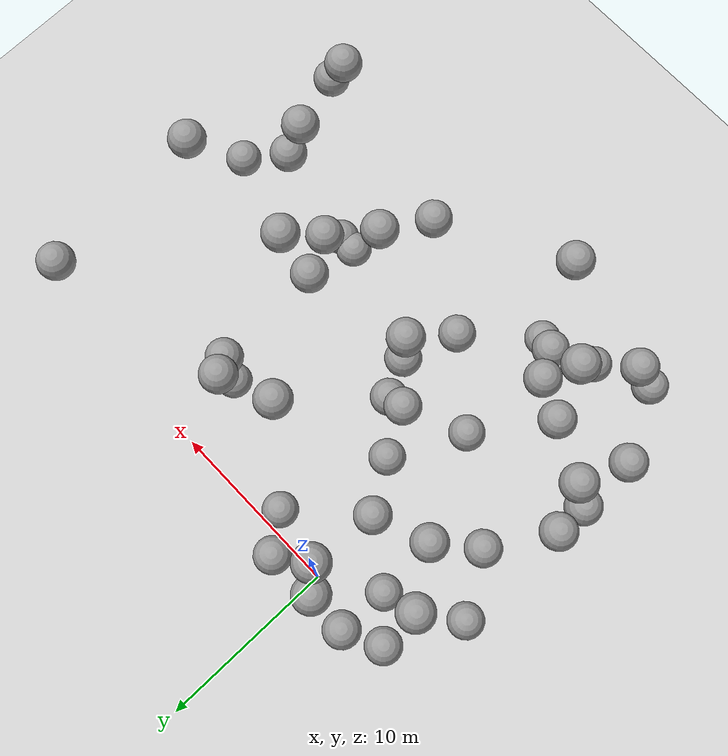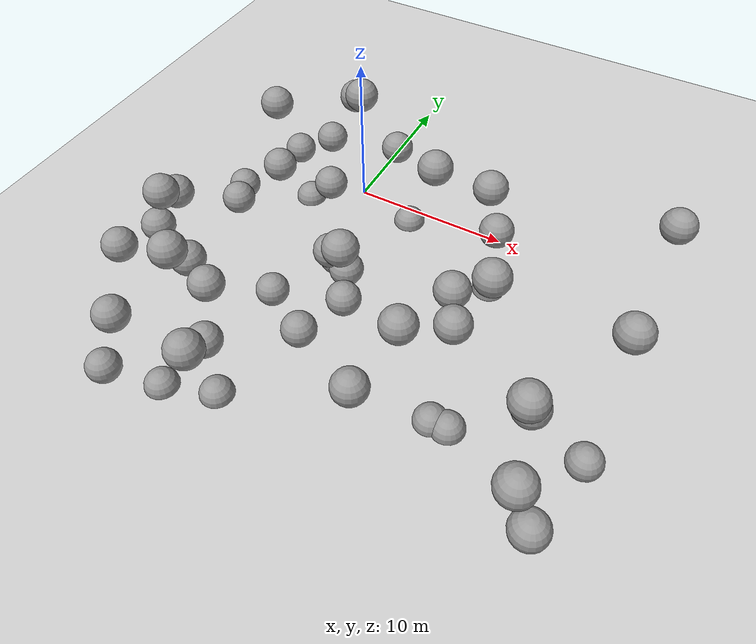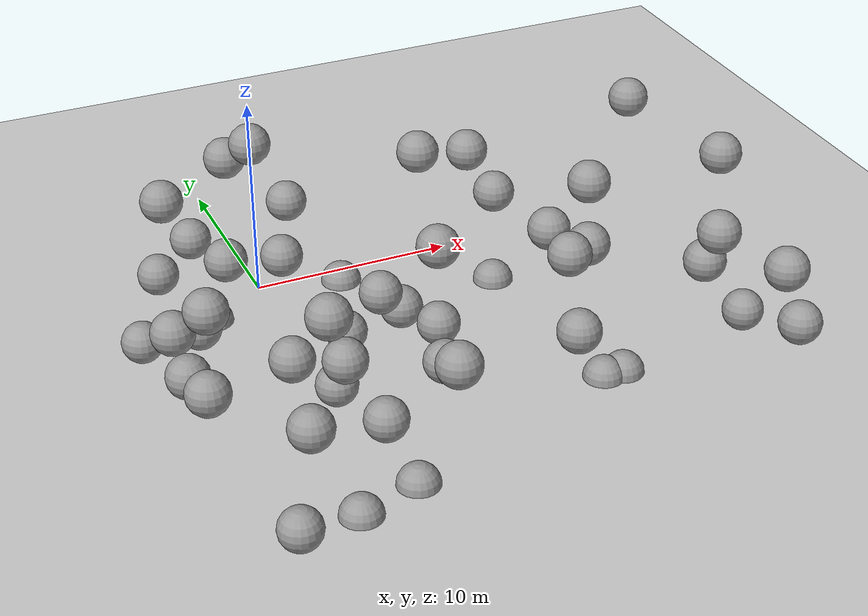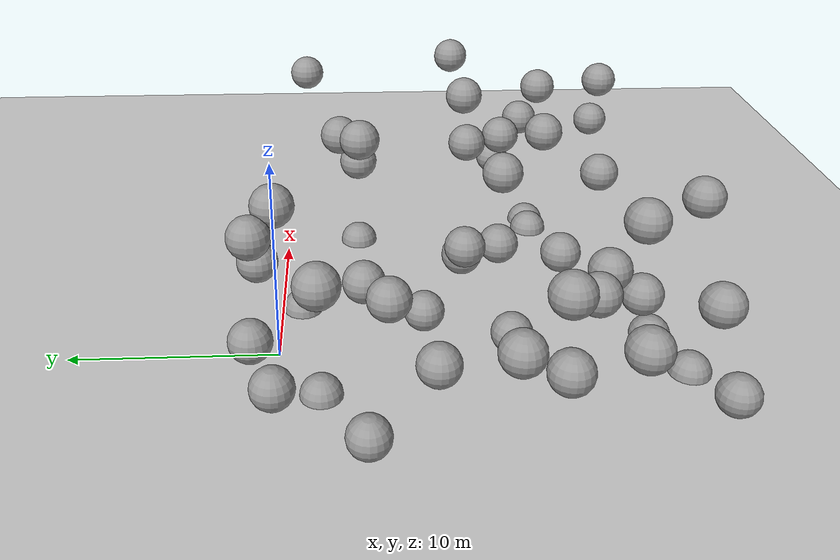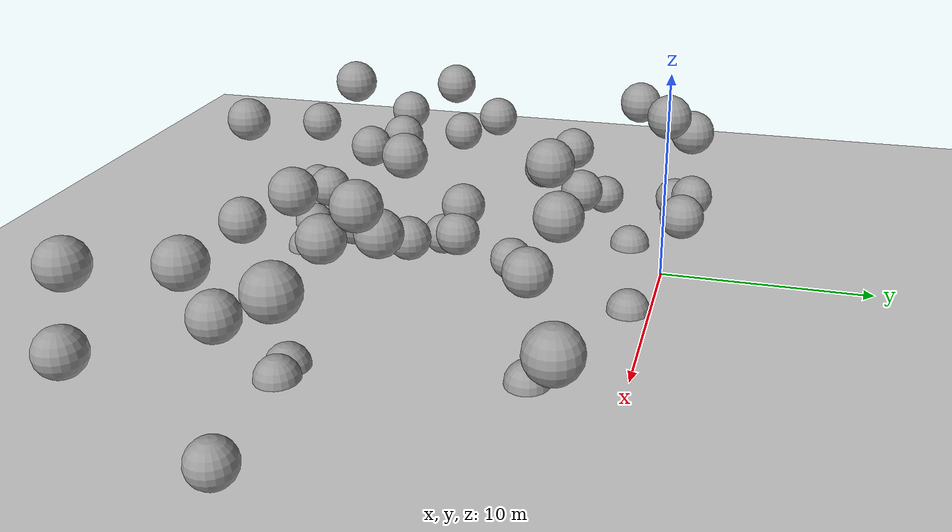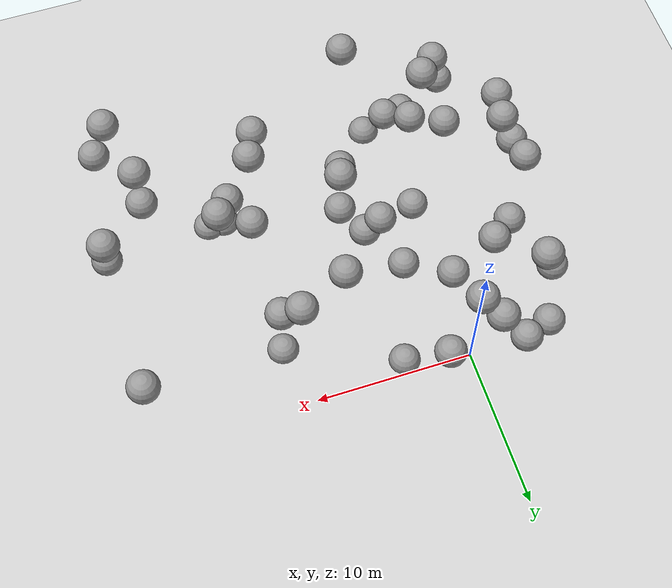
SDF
<sdf version="1.7">
 <world name="default">
  <model name="ground_plane">
   <static>1</static>
   <link name="link">
    <collision name="collision">
     <geometry><plane><normal>0 0 1</normal><size>100 100</size></plane></geometry>
     <surface>
      <contact><collide_bitmask>65535</collide_bitmask></contact>
      <friction><ode><mu>100</mu><mu2>50</mu2></ode></friction>
     </surface>
    </collision>
    <visual name="visual">
     <cast_shadows>0</cast_shadows>
     <geometry><plane><normal>0 0 1</normal><size>100 100</size></plane></geometry>
     <material>
      <script><uri>file://media/materials/scripts/gazebo.material</uri><name>Gazebo/Grey</name></script>
     </material>
    </visual>
   </link>
  </model>
  <model name="sphere_0">
   <static>1</static>
   <pose>0 0 8 0 0 0</pose>
   <link name="link">
    <inertial>
     <mass>418.87902047863906</mass>
     <inertia>
      <ixx>167.55160819145564</ixx>
      <iyy>167.55160819145564</iyy>
      <izz>167.55160819145564</izz>
      <ixy>0</ixy>
      <ixz>0</ixz>
      <iyz>0</iyz>
     </inertia>
    </inertial>
    <collision name="collision"><geometry><sphere><radius>1.0</radius></sphere></geometry></collision>
    <visual name="visual">
     <geometry><sphere><radius>1.0</radius></sphere></geometry>
     <material>
      <script><uri>file://media/materials/scripts/gazebo.material</uri><name>Gazebo/Grey</name></script>
     </material>
    </visual>
   </link>
  </model>
  <model name="sphere_5">
   <static>1</static>
   <pose>2 1 4 0 0 0</pose>
   <link name="link">
    <inertial>
     <mass>418.87902047863906</mass>
     <inertia>
      <ixx>167.55160819145564</ixx>
      <iyy>167.55160819145564</iyy>
      <izz>167.55160819145564</izz>
      <ixy>0</ixy>
      <ixz>0</ixz>
      <iyz>0</iyz>
     </inertia>
    </inertial>
    <collision name="collision"><geometry><sphere><radius>1.0</radius></sphere></geometry></collision>
    <visual name="visual">
     <geometry><sphere><radius>1.0</radius></sphere></geometry>
     <material>
      <script><uri>file://media/materials/scripts/gazebo.material</uri><name>Gazebo/Grey</name></script>
     </material>
    </visual>
   </link>
  </model>
  <model name="sphere_8">
   <static>1</static>
   <pose>4 -9 3 0 0 0</pose>
   <link name="link">
    <inertial>
     <mass>418.87902047863906</mass>
     <inertia>
      <ixx>167.55160819145564</ixx>
      <iyy>167.55160819145564</iyy>
      <izz>167.55160819145564</izz>
      <ixy>0</ixy>
      <ixz>0</ixz>
      <iyz>0</iyz>
     </inertia>
    </inertial>
    <collision name="collision"><geometry><sphere><radius>1.0</radius></sphere></geometry></collision>
    <visual name="visual">
     <geometry><sphere><radius>1.0</radius></sphere></geometry>
     <material>
      <script><uri>file://media/materials/scripts/gazebo.material</uri><name>Gazebo/Grey</name></script>
     </material>
    </visual>
   </link>
  </model>
  <model name="sphere_10">
   <static>1</static>
   <pose>11 -4 5 0 0 0</pose>
   <link name="link">
    <inertial>
     <mass>418.87902047863906</mass>
     <inertia>
      <ixx>167.55160819145564</ixx>
      <iyy>167.55160819145564</iyy>
      <izz>167.55160819145564</izz>
      <ixy>0</ixy>
      <ixz>0</ixz>
      <iyz>0</iyz>
     </inertia>
    </inertial>
    <collision name="collision"><geometry><sphere><radius>1.0</radius></sphere></geometry></collision>
    <visual name="visual">
     <geometry><sphere><radius>1.0</radius></sphere></geometry>
     <material>
      <script><uri>file://media/materials/scripts/gazebo.material</uri><name>Gazebo/Grey</name></script>
     </material>
    </visual>
   </link>
  </model>
  <model name="sphere_13">
   <static>1</static>
   <pose>12 -14 0 0 0 0</pose>
   <link name="link">
    <inertial>
     <mass>418.87902047863906</mass>
     <inertia>
      <ixx>167.55160819145564</ixx>
      <iyy>167.55160819145564</iyy>
      <izz>167.55160819145564</izz>
      <ixy>0</ixy>
      <ixz>0</ixz>
      <iyz>0</iyz>
     </inertia>
    </inertial>
    <collision name="collision"><geometry><sphere><radius>1.0</radius></sphere></geometry></collision>
    <visual name="visual">
     <geometry><sphere><radius>1.0</radius></sphere></geometry>
     <material>
      <script><uri>file://media/materials/scripts/gazebo.material</uri><name>Gazebo/Grey</name></script>
     </material>
    </visual>
   </link>
  </model>
  <model name="sphere_22">
   <static>1</static>
   <pose>2 -7 1 0 0 0</pose>
   <link name="link">
    <inertial>
     <mass>418.87902047863906</mass>
     <inertia>
      <ixx>167.55160819145564</ixx>
      <iyy>167.55160819145564</iyy>
      <izz>167.55160819145564</izz>
      <ixy>0</ixy>
      <ixz>0</ixz>
      <iyz>0</iyz>
     </inertia>
    </inertial>
    <collision name="collision"><geometry><sphere><radius>1.0</radius></sphere></geometry></collision>
    <visual name="visual">
     <geometry><sphere><radius>1.0</radius></sphere></geometry>
     <material>
      <script><uri>file://media/materials/scripts/gazebo.material</uri><name>Gazebo/Grey</name></script>
     </material>
    </visual>
   </link>
  </model>
  <model name="sphere_25">
   <static>1</static>
   <pose>3 -9 4 0 0 0</pose>
   <link name="link">
    <inertial>
     <mass>418.87902047863906</mass>
     <inertia>
      <ixx>167.55160819145564</ixx>
      <iyy>167.55160819145564</iyy>
      <izz>167.55160819145564</izz>
      <ixy>0</ixy>
      <ixz>0</ixz>
      <iyz>0</iyz>
     </inertia>
    </inertial>
    <collision name="collision"><geometry><sphere><radius>1.0</radius></sphere></geometry></collision>
    <visual name="visual">
     <geometry><sphere><radius>1.0</radius></sphere></geometry>
     <material>
      <script><uri>file://media/materials/scripts/gazebo.material</uri><name>Gazebo/Grey</name></script>
     </material>
    </visual>
   </link>
  </model>
  <model name="sphere_26">
   <static>1</static>
   <pose>20 -1 7 0 0 0</pose>
   <link name="link">
    <inertial>
     <mass>418.87902047863906</mass>
     <inertia>
      <ixx>167.55160819145564</ixx>
      <iyy>167.55160819145564</iyy>
      <izz>167.55160819145564</izz>
      <ixy>0</ixy>
      <ixz>0</ixz>
      <iyz>0</iyz>
     </inertia>
    </inertial>
    <collision name="collision"><geometry><sphere><radius>1.0</radius></sphere></geometry></collision>
    <visual name="visual">
     <geometry><sphere><radius>1.0</radius></sphere></geometry>
     <material>
      <script><uri>file://media/materials/scripts/gazebo.material</uri><name>Gazebo/Grey</name></script>
     </material>
    </visual>
   </link>
  </model>
  <model name="sphere_27">
   <static>1</static>
   <pose>9 -17 5 0 0 0</pose>
   <link name="link">
    <inertial>
     <mass>418.87902047863906</mass>
     <inertia>
      <ixx>167.55160819145564</ixx>
      <iyy>167.55160819145564</iyy>
      <izz>167.55160819145564</izz>
      <ixy>0</ixy>
      <ixz>0</ixz>
      <iyz>0</iyz>
     </inertia>
    </inertial>
    <collision name="collision"><geometry><sphere><radius>1.0</radius></sphere></geometry></collision>
    <visual name="visual">
     <geometry><sphere><radius>1.0</radius></sphere></geometry>
     <material>
      <script><uri>file://media/materials/scripts/gazebo.material</uri><name>Gazebo/Grey</name></script>
     </material>
    </visual>
   </link>
  </model>
  <model name="sphere_43">
   <static>1</static>
   <pose>4 -1 0 0 0 0</pose>
   <link name="link">
    <inertial>
     <mass>418.87902047863906</mass>
     <inertia>
      <ixx>167.55160819145564</ixx>
      <iyy>167.55160819145564</iyy>
      <izz>167.55160819145564</izz>
      <ixy>0</ixy>
      <ixz>0</ixz>
      <iyz>0</iyz>
     </inertia>
    </inertial>
    <collision name="collision"><geometry><sphere><radius>1.0</radius></sphere></geometry></collision>
    <visual name="visual">
     <geometry><sphere><radius>1.0</radius></sphere></geometry>
     <material>
      <script><uri>file://media/materials/scripts/gazebo.material</uri><name>Gazebo/Grey</name></script>
     </material>
    </visual>
   </link>
  </model>
  <model name="sphere_45">
   <static>1</static>
   <pose>13 -14 0 0 0 0</pose>
   <link name="link">
    <inertial>
     <mass>418.87902047863906</mass>
     <inertia>
      <ixx>167.55160819145564</ixx>
      <iyy>167.55160819145564</iyy>
      <izz>167.55160819145564</izz>
      <ixy>0</ixy>
      <ixz>0</ixz>
      <iyz>0</iyz>
     </inertia>
    </inertial>
    <collision name="collision"><geometry><sphere><radius>1.0</radius></sphere></geometry></collision>
    <visual name="visual">
     <geometry><sphere><radius>1.0</radius></sphere></geometry>
     <material>
      <script><uri>file://media/materials/scripts/gazebo.material</uri><name>Gazebo/Grey</name></script>
     </material>
    </visual>
   </link>
  </model>
  <model name="sphere_51">
   <static>1</static>
   <pose>-7 -12 4 0 0 0</pose>
   <link name="link">
    <inertial>
     <mass>418.87902047863906</mass>
     <inertia>
      <ixx>167.55160819145564</ixx>
      <iyy>167.55160819145564</iyy>
      <izz>167.55160819145564</izz>
      <ixy>0</ixy>
      <ixz>0</ixz>
      <iyz>0</iyz>
     </inertia>
    </inertial>
    <collision name="collision"><geometry><sphere><radius>1.0</radius></sphere></geometry></collision>
    <visual name="visual">
     <geometry><sphere><radius>1.0</radius></sphere></geometry>
     <material>
      <script><uri>file://media/materials/scripts/gazebo.material</uri><name>Gazebo/Grey</name></script>
     </material>
    </visual>
   </link>
  </model>
  <model name="sphere_54">
   <static>1</static>
   <pose>10 -3 7 0 0 0</pose>
   <link name="link">
    <inertial>
     <mass>418.87902047863906</mass>
     <inertia>
      <ixx>167.55160819145564</ixx>
      <iyy>167.55160819145564</iyy>
      <izz>167.55160819145564</izz>
      <ixy>0</ixy>
      <ixz>0</ixz>
      <iyz>0</iyz>
     </inertia>
    </inertial>
    <collision name="collision"><geometry><sphere><radius>1.0</radius></sphere></geometry></collision>
    <visual name="visual">
     <geometry><sphere><radius>1.0</radius></sphere></geometry>
     <material>
      <script><uri>file://media/materials/scripts/gazebo.material</uri><name>Gazebo/Grey</name></script>
     </material>
    </visual>
   </link>
  </model>
  <model name="sphere_58">
   <static>1</static>
   <pose>17 -15 7 0 0 0</pose>
   <link name="link">
    <inertial>
     <mass>418.87902047863906</mass>
     <inertia>
      <ixx>167.55160819145564</ixx>
      <iyy>167.55160819145564</iyy>
      <izz>167.55160819145564</izz>
      <ixy>0</ixy>
      <ixz>0</ixz>
      <iyz>0</iyz>
     </inertia>
    </inertial>
    <collision name="collision"><geometry><sphere><radius>1.0</radius></sphere></geometry></collision>
    <visual name="visual">
     <geometry><sphere><radius>1.0</radius></sphere></geometry>
     <material>
      <script><uri>file://media/materials/scripts/gazebo.material</uri><name>Gazebo/Grey</name></script>
     </material>
    </visual>
   </link>
  </model>
  <model name="sphere_59">
   <static>1</static>
   <pose>-2 -19 0 0 0 0</pose>
   <link name="link">
    <inertial>
     <mass>418.87902047863906</mass>
     <inertia>
      <ixx>167.55160819145564</ixx>
      <iyy>167.55160819145564</iyy>
      <izz>167.55160819145564</izz>
      <ixy>0</ixy>
      <ixz>0</ixz>
      <iyz>0</iyz>
     </inertia>
    </inertial>
    <collision name="collision"><geometry><sphere><radius>1.0</radius></sphere></geometry></collision>
    <visual name="visual">
     <geometry><sphere><radius>1.0</radius></sphere></geometry>
     <material>
      <script><uri>file://media/materials/scripts/gazebo.material</uri><name>Gazebo/Grey</name></script>
     </material>
    </visual>
   </link>
  </model>
  <model name="sphere_63">
   <static>1</static>
   <pose>-5 -7 3 0 0 0</pose>
   <link name="link">
    <inertial>
     <mass>418.87902047863906</mass>
     <inertia>
      <ixx>167.55160819145564</ixx>
      <iyy>167.55160819145564</iyy>
      <izz>167.55160819145564</izz>
      <ixy>0</ixy>
      <ixz>0</ixz>
      <iyz>0</iyz>
     </inertia>
    </inertial>
    <collision name="collision"><geometry><sphere><radius>1.0</radius></sphere></geometry></collision>
    <visual name="visual">
     <geometry><sphere><radius>1.0</radius></sphere></geometry>
     <material>
      <script><uri>file://media/materials/scripts/gazebo.material</uri><name>Gazebo/Grey</name></script>
     </material>
    </visual>
   </link>
  </model>
  <model name="sphere_64">
   <static>1</static>
   <pose>-1 -15 5 0 0 0</pose>
   <link name="link">
    <inertial>
     <mass>418.87902047863906</mass>
     <inertia>
      <ixx>167.55160819145564</ixx>
      <iyy>167.55160819145564</iyy>
      <izz>167.55160819145564</izz>
      <ixy>0</ixy>
      <ixz>0</ixz>
      <iyz>0</iyz>
     </inertia>
    </inertial>
    <collision name="collision"><geometry><sphere><radius>1.0</radius></sphere></geometry></collision>
    <visual name="visual">
     <geometry><sphere><radius>1.0</radius></sphere></geometry>
     <material>
      <script><uri>file://media/materials/scripts/gazebo.material</uri><name>Gazebo/Grey</name></script>
     </material>
    </visual>
   </link>
  </model>
  <model name="sphere_65">
   <static>1</static>
   <pose>5 -11 7 0 0 0</pose>
   <link name="link">
    <inertial>
     <mass>418.87902047863906</mass>
     <inertia>
      <ixx>167.55160819145564</ixx>
      <iyy>167.55160819145564</iyy>
      <izz>167.55160819145564</izz>
      <ixy>0</ixy>
      <ixz>0</ixz>
      <iyz>0</iyz>
     </inertia>
    </inertial>
    <collision name="collision"><geometry><sphere><radius>1.0</radius></sphere></geometry></collision>
    <visual name="visual">
     <geometry><sphere><radius>1.0</radius></sphere></geometry>
     <material>
      <script><uri>file://media/materials/scripts/gazebo.material</uri><name>Gazebo/Grey</name></script>
     </material>
    </visual>
   </link>
  </model>
  <model name="sphere_66">
   <static>1</static>
   <pose>-7 -4 1 0 0 0</pose>
   <link name="link">
    <inertial>
     <mass>418.87902047863906</mass>
     <inertia>
      <ixx>167.55160819145564</ixx>
      <iyy>167.55160819145564</iyy>
      <izz>167.55160819145564</izz>
      <ixy>0</ixy>
      <ixz>0</ixz>
      <iyz>0</iyz>
     </inertia>
    </inertial>
    <collision name="collision"><geometry><sphere><radius>1.0</radius></sphere></geometry></collision>
    <visual name="visual">
     <geometry><sphere><radius>1.0</radius></sphere></geometry>
     <material>
      <script><uri>file://media/materials/scripts/gazebo.material</uri><name>Gazebo/Grey</name></script>
     </material>
    </visual>
   </link>
  </model>
  <model name="sphere_70">
   <static>1</static>
   <pose>-3 -2 0 0 0 0</pose>
   <link name="link">
    <inertial>
     <mass>418.87902047863906</mass>
     <inertia>
      <ixx>167.55160819145564</ixx>
      <iyy>167.55160819145564</iyy>
      <izz>167.55160819145564</izz>
      <ixy>0</ixy>
      <ixz>0</ixz>
      <iyz>0</iyz>
     </inertia>
    </inertial>
    <collision name="collision"><geometry><sphere><radius>1.0</radius></sphere></geometry></collision>
    <visual name="visual">
     <geometry><sphere><radius>1.0</radius></sphere></geometry>
     <material>
      <script><uri>file://media/materials/scripts/gazebo.material</uri><name>Gazebo/Grey</name></script>
     </material>
    </visual>
   </link>
  </model>
  <model name="sphere_71">
   <static>1</static>
   <pose>11 -10 6 0 0 0</pose>
   <link name="link">
    <inertial>
     <mass>418.87902047863906</mass>
     <inertia>
      <ixx>167.55160819145564</ixx>
      <iyy>167.55160819145564</iyy>
      <izz>167.55160819145564</izz>
      <ixy>0</ixy>
      <ixz>0</ixz>
      <iyz>0</iyz>
     </inertia>
    </inertial>
    <collision name="collision"><geometry><sphere><radius>1.0</radius></sphere></geometry></collision>
    <visual name="visual">
     <geometry><sphere><radius>1.0</radius></sphere></geometry>
     <material>
      <script><uri>file://media/materials/scripts/gazebo.material</uri><name>Gazebo/Grey</name></script>
     </material>
    </visual>
   </link>
  </model>
  <model name="sphere_75">
   <static>1</static>
   <pose>17 -14 5 0 0 0</pose>
   <link name="link">
    <inertial>
     <mass>418.87902047863906</mass>
     <inertia>
      <ixx>167.55160819145564</ixx>
      <iyy>167.55160819145564</iyy>
      <izz>167.55160819145564</izz>
      <ixy>0</ixy>
      <ixz>0</ixz>
      <iyz>0</iyz>
     </inertia>
    </inertial>
    <collision name="collision"><geometry><sphere><radius>1.0</radius></sphere></geometry></collision>
    <visual name="visual">
     <geometry><sphere><radius>1.0</radius></sphere></geometry>
     <material>
      <script><uri>file://media/materials/scripts/gazebo.material</uri><name>Gazebo/Grey</name></script>
     </material>
    </visual>
   </link>
  </model>
  <model name="sphere_77">
   <static>1</static>
   <pose>-3 -5 5 0 0 0</pose>
   <link name="link">
    <inertial>
     <mass>418.87902047863906</mass>
     <inertia>
      <ixx>167.55160819145564</ixx>
      <iyy>167.55160819145564</iyy>
      <izz>167.55160819145564</izz>
      <ixy>0</ixy>
      <ixz>0</ixz>
      <iyz>0</iyz>
     </inertia>
    </inertial>
    <collision name="collision"><geometry><sphere><radius>1.0</radius></sphere></geometry></collision>
    <visual name="visual">
     <geometry><sphere><radius>1.0</radius></sphere></geometry>
     <material>
      <script><uri>file://media/materials/scripts/gazebo.material</uri><name>Gazebo/Grey</name></script>
     </material>
    </visual>
   </link>
  </model>
  <model name="sphere_82">
   <static>1</static>
   <pose>-3 -14 5 0 0 0</pose>
   <link name="link">
    <inertial>
     <mass>418.87902047863906</mass>
     <inertia>
      <ixx>167.55160819145564</ixx>
      <iyy>167.55160819145564</iyy>
      <izz>167.55160819145564</izz>
      <ixy>0</ixy>
      <ixz>0</ixz>
      <iyz>0</iyz>
     </inertia>
    </inertial>
    <collision name="collision"><geometry><sphere><radius>1.0</radius></sphere></geometry></collision>
    <visual name="visual">
     <geometry><sphere><radius>1.0</radius></sphere></geometry>
     <material>
      <script><uri>file://media/materials/scripts/gazebo.material</uri><name>Gazebo/Grey</name></script>
     </material>
    </visual>
   </link>
  </model>
  <model name="sphere_83">
   <static>1</static>
   <pose>0 -11 1 0 0 0</pose>
   <link name="link">
    <inertial>
     <mass>418.87902047863906</mass>
     <inertia>
      <ixx>167.55160819145564</ixx>
      <iyy>167.55160819145564</iyy>
      <izz>167.55160819145564</izz>
      <ixy>0</ixy>
      <ixz>0</ixz>
      <iyz>0</iyz>
     </inertia>
    </inertial>
    <collision name="collision"><geometry><sphere><radius>1.0</radius></sphere></geometry></collision>
    <visual name="visual">
     <geometry><sphere><radius>1.0</radius></sphere></geometry>
     <material>
      <script><uri>file://media/materials/scripts/gazebo.material</uri><name>Gazebo/Grey</name></script>
     </material>
    </visual>
   </link>
  </model>
  <model name="sphere_86">
   <static>1</static>
   <pose>-1 1 7 0 0 0</pose>
   <link name="link">
    <inertial>
     <mass>418.87902047863906</mass>
     <inertia>
      <ixx>167.55160819145564</ixx>
      <iyy>167.55160819145564</iyy>
      <izz>167.55160819145564</izz>
      <ixy>0</ixy>
      <ixz>0</ixz>
      <iyz>0</iyz>
     </inertia>
    </inertial>
    <collision name="collision"><geometry><sphere><radius>1.0</radius></sphere></geometry></collision>
    <visual name="visual">
     <geometry><sphere><radius>1.0</radius></sphere></geometry>
     <material>
      <script><uri>file://media/materials/scripts/gazebo.material</uri><name>Gazebo/Grey</name></script>
     </material>
    </visual>
   </link>
  </model>
  <model name="sphere_91">
   <static>1</static>
   <pose>0 -17 3 0 0 0</pose>
   <link name="link">
    <inertial>
     <mass>418.87902047863906</mass>
     <inertia>
      <ixx>167.55160819145564</ixx>
      <iyy>167.55160819145564</iyy>
      <izz>167.55160819145564</izz>
      <ixy>0</ixy>
      <ixz>0</ixz>
      <iyz>0</iyz>
     </inertia>
    </inertial>
    <collision name="collision"><geometry><sphere><radius>1.0</radius></sphere></geometry></collision>
    <visual name="visual">
     <geometry><sphere><radius>1.0</radius></sphere></geometry>
     <material>
      <script><uri>file://media/materials/scripts/gazebo.material</uri><name>Gazebo/Grey</name></script>
     </material>
    </visual>
   </link>
  </model>
  <model name="sphere_99">
   <static>1</static>
   <pose>-2 -16 8 0 0 0</pose>
   <link name="link">
    <inertial>
     <mass>418.87902047863906</mass>
     <inertia>
      <ixx>167.55160819145564</ixx>
      <iyy>167.55160819145564</iyy>
      <izz>167.55160819145564</izz>
      <ixy>0</ixy>
      <ixz>0</ixz>
      <iyz>0</iyz>
     </inertia>
    </inertial>
    <collision name="collision"><geometry><sphere><radius>1.0</radius></sphere></geometry></collision>
    <visual name="visual">
     <geometry><sphere><radius>1.0</radius></sphere></geometry>
     <material>
      <script><uri>file://media/materials/scripts/gazebo.material</uri><name>Gazebo/Grey</name></script>
     </material>
    </visual>
   </link>
  </model>
  <model name="sphere_102">
   <static>1</static>
   <pose>20 -10 8 0 0 0</pose>
   <link name="link">
    <inertial>
     <mass>418.87902047863906</mass>
     <inertia>
      <ixx>167.55160819145564</ixx>
      <iyy>167.55160819145564</iyy>
      <izz>167.55160819145564</izz>
      <ixy>0</ixy>
      <ixz>0</ixz>
      <iyz>0</iyz>
     </inertia>
    </inertial>
    <collision name="collision"><geometry><sphere><radius>1.0</radius></sphere></geometry></collision>
    <visual name="visual">
     <geometry><sphere><radius>1.0</radius></sphere></geometry>
     <material>
      <script><uri>file://media/materials/scripts/gazebo.material</uri><name>Gazebo/Grey</name></script>
     </material>
    </visual>
   </link>
  </model>
  <model name="sphere_104">
   <static>1</static>
   <pose>-7 -15 5 0 0 0</pose>
   <link name="link">
    <inertial>
     <mass>418.87902047863906</mass>
     <inertia>
      <ixx>167.55160819145564</ixx>
      <iyy>167.55160819145564</iyy>
      <izz>167.55160819145564</izz>
      <ixy>0</ixy>
      <ixz>0</ixz>
      <iyz>0</iyz>
     </inertia>
    </inertial>
    <collision name="collision"><geometry><sphere><radius>1.0</radius></sphere></geometry></collision>
    <visual name="visual">
     <geometry><sphere><radius>1.0</radius></sphere></geometry>
     <material>
      <script><uri>file://media/materials/scripts/gazebo.material</uri><name>Gazebo/Grey</name></script>
     </material>
    </visual>
   </link>
  </model>
  <model name="sphere_105">
   <static>1</static>
   <pose>2 -20 7 0 0 0</pose>
   <link name="link">
    <inertial>
     <mass>418.87902047863906</mass>
     <inertia>
      <ixx>167.55160819145564</ixx>
      <iyy>167.55160819145564</iyy>
      <izz>167.55160819145564</izz>
      <ixy>0</ixy>
      <ixz>0</ixz>
      <iyz>0</iyz>
     </inertia>
    </inertial>
    <collision name="collision"><geometry><sphere><radius>1.0</radius></sphere></geometry></collision>
    <visual name="visual">
     <geometry><sphere><radius>1.0</radius></sphere></geometry>
     <material>
      <script><uri>file://media/materials/scripts/gazebo.material</uri><name>Gazebo/Grey</name></script>
     </material>
    </visual>
   </link>
  </model>
  <model name="sphere_106">
   <static>1</static>
   <pose>20 -13 1 0 0 0</pose>
   <link name="link">
    <inertial>
     <mass>418.87902047863906</mass>
     <inertia>
      <ixx>167.55160819145564</ixx>
      <iyy>167.55160819145564</iyy>
      <izz>167.55160819145564</izz>
      <ixy>0</ixy>
      <ixz>0</ixz>
      <iyz>0</iyz>
     </inertia>
    </inertial>
    <collision name="collision"><geometry><sphere><radius>1.0</radius></sphere></geometry></collision>
    <visual name="visual">
     <geometry><sphere><radius>1.0</radius></sphere></geometry>
     <material>
      <script><uri>file://media/materials/scripts/gazebo.material</uri><name>Gazebo/Grey</name></script>
     </material>
    </visual>
   </link>
  </model>
  <model name="sphere_110">
   <static>1</static>
   <pose>-3 1 3 0 0 0</pose>
   <link name="link">
    <inertial>
     <mass>418.87902047863906</mass>
     <inertia>
      <ixx>167.55160819145564</ixx>
      <iyy>167.55160819145564</iyy>
      <izz>167.55160819145564</izz>
      <ixy>0</ixy>
      <ixz>0</ixz>
      <iyz>0</iyz>
     </inertia>
    </inertial>
    <collision name="collision"><geometry><sphere><radius>1.0</radius></sphere></geometry></collision>
    <visual name="visual">
     <geometry><sphere><radius>1.0</radius></sphere></geometry>
     <material>
      <script><uri>file://media/materials/scripts/gazebo.material</uri><name>Gazebo/Grey</name></script>
     </material>
    </visual>
   </link>
  </model>
  <model name="sphere_112">
   <static>1</static>
   <pose>-7 -10 5 0 0 0</pose>
   <link name="link">
    <inertial>
     <mass>418.87902047863906</mass>
     <inertia>
      <ixx>167.55160819145564</ixx>
      <iyy>167.55160819145564</iyy>
      <izz>167.55160819145564</izz>
      <ixy>0</ixy>
      <ixz>0</ixz>
      <iyz>0</iyz>
     </inertia>
    </inertial>
    <collision name="collision"><geometry><sphere><radius>1.0</radius></sphere></geometry></collision>
    <visual name="visual">
     <geometry><sphere><radius>1.0</radius></sphere></geometry>
     <material>
      <script><uri>file://media/materials/scripts/gazebo.material</uri><name>Gazebo/Grey</name></script>
     </material>
    </visual>
   </link>
  </model>
  <model name="sphere_113">
   <static>1</static>
   <pose>19 -19 4 0 0 0</pose>
   <link name="link">
    <inertial>
     <mass>418.87902047863906</mass>
     <inertia>
      <ixx>167.55160819145564</ixx>
      <iyy>167.55160819145564</iyy>
      <izz>167.55160819145564</izz>
      <ixy>0</ixy>
      <ixz>0</ixz>
      <iyz>0</iyz>
     </inertia>
    </inertial>
    <collision name="collision"><geometry><sphere><radius>1.0</radius></sphere></geometry></collision>
    <visual name="visual">
     <geometry><sphere><radius>1.0</radius></sphere></geometry>
     <material>
      <script><uri>file://media/materials/scripts/gazebo.material</uri><name>Gazebo/Grey</name></script>
     </material>
    </visual>
   </link>
  </model>
  <model name="sphere_118">
   <static>1</static>
   <pose>0 -4 4 0 0 0</pose>
   <link name="link">
    <inertial>
     <mass>418.87902047863906</mass>
     <inertia>
      <ixx>167.55160819145564</ixx>
      <iyy>167.55160819145564</iyy>
      <izz>167.55160819145564</izz>
      <ixy>0</ixy>
      <ixz>0</ixz>
      <iyz>0</iyz>
     </inertia>
    </inertial>
    <collision name="collision"><geometry><sphere><radius>1.0</radius></sphere></geometry></collision>
    <visual name="visual">
     <geometry><sphere><radius>1.0</radius></sphere></geometry>
     <material>
      <script><uri>file://media/materials/scripts/gazebo.material</uri><name>Gazebo/Grey</name></script>
     </material>
    </visual>
   </link>
  </model>
  <model name="sphere_121">
   <static>1</static>
   <pose>10 -14 7 0 0 0</pose>
   <link name="link">
    <inertial>
     <mass>418.87902047863906</mass>
     <inertia>
      <ixx>167.55160819145564</ixx>
      <iyy>167.55160819145564</iyy>
      <izz>167.55160819145564</izz>
      <ixy>0</ixy>
      <ixz>0</ixz>
      <iyz>0</iyz>
     </inertia>
    </inertial>
    <collision name="collision"><geometry><sphere><radius>1.0</radius></sphere></geometry></collision>
    <visual name="visual">
     <geometry><sphere><radius>1.0</radius></sphere></geometry>
     <material>
      <script><uri>file://media/materials/scripts/gazebo.material</uri><name>Gazebo/Grey</name></script>
     </material>
    </visual>
   </link>
  </model>
  <model name="sphere_122">
   <static>1</static>
   <pose>18 -19 7 0 0 0</pose>
   <link name="link">
    <inertial>
     <mass>418.87902047863906</mass>
     <inertia>
      <ixx>167.55160819145564</ixx>
      <iyy>167.55160819145564</iyy>
      <izz>167.55160819145564</izz>
      <ixy>0</ixy>
      <ixz>0</ixz>
      <iyz>0</iyz>
     </inertia>
    </inertial>
    <collision name="collision"><geometry><sphere><radius>1.0</radius></sphere></geometry></collision>
    <visual name="visual">
     <geometry><sphere><radius>1.0</radius></sphere></geometry>
     <material>
      <script><uri>file://media/materials/scripts/gazebo.material</uri><name>Gazebo/Grey</name></script>
     </material>
    </visual>
   </link>
  </model>
  <model name="sphere_124">
   <static>1</static>
   <pose>13 -10 8 0 0 0</pose>
   <link name="link">
    <inertial>
     <mass>418.87902047863906</mass>
     <inertia>
      <ixx>167.55160819145564</ixx>
      <iyy>167.55160819145564</iyy>
      <izz>167.55160819145564</izz>
      <ixy>0</ixy>
      <ixz>0</ixz>
      <iyz>0</iyz>
     </inertia>
    </inertial>
    <collision name="collision"><geometry><sphere><radius>1.0</radius></sphere></geometry></collision>
    <visual name="visual">
     <geometry><sphere><radius>1.0</radius></sphere></geometry>
     <material>
      <script><uri>file://media/materials/scripts/gazebo.material</uri><name>Gazebo/Grey</name></script>
     </material>
    </visual>
   </link>
  </model>
  <model name="sphere_125">
   <static>1</static>
   <pose>-6 -12 7 0 0 0</pose>
   <link name="link">
    <inertial>
     <mass>418.87902047863906</mass>
     <inertia>
      <ixx>167.55160819145564</ixx>
      <iyy>167.55160819145564</iyy>
      <izz>167.55160819145564</izz>
      <ixy>0</ixy>
      <ixz>0</ixz>
      <iyz>0</iyz>
     </inertia>
    </inertial>
    <collision name="collision"><geometry><sphere><radius>1.0</radius></sphere></geometry></collision>
    <visual name="visual">
     <geometry><sphere><radius>1.0</radius></sphere></geometry>
     <material>
      <script><uri>file://media/materials/scripts/gazebo.material</uri><name>Gazebo/Grey</name></script>
     </material>
    </visual>
   </link>
  </model>
  <model name="sphere_126">
   <static>1</static>
   <pose>12 -12 6 0 0 0</pose>
   <link name="link">
    <inertial>
     <mass>418.87902047863906</mass>
     <inertia>
      <ixx>167.55160819145564</ixx>
      <iyy>167.55160819145564</iyy>
      <izz>167.55160819145564</izz>
      <ixy>0</ixy>
      <ixz>0</ixz>
      <iyz>0</iyz>
     </inertia>
    </inertial>
    <collision name="collision"><geometry><sphere><radius>1.0</radius></sphere></geometry></collision>
    <visual name="visual">
     <geometry><sphere><radius>1.0</radius></sphere></geometry>
     <material>
      <script><uri>file://media/materials/scripts/gazebo.material</uri><name>Gazebo/Grey</name></script>
     </material>
    </visual>
   </link>
  </model>
  <model name="sphere_127">
   <static>1</static>
   <pose>-5 0 2 0 0 0</pose>
   <link name="link">
    <inertial>
     <mass>418.87902047863906</mass>
     <inertia>
      <ixx>167.55160819145564</ixx>
      <iyy>167.55160819145564</iyy>
      <izz>167.55160819145564</izz>
      <ixy>0</ixy>
      <ixz>0</ixz>
      <iyz>0</iyz>
     </inertia>
    </inertial>
    <collision name="collision"><geometry><sphere><radius>1.0</radius></sphere></geometry></collision>
    <visual name="visual">
     <geometry><sphere><radius>1.0</radius></sphere></geometry>
     <material>
      <script><uri>file://media/materials/scripts/gazebo.material</uri><name>Gazebo/Grey</name></script>
     </material>
    </visual>
   </link>
  </model>
  <model name="sphere_128">
   <static>1</static>
   <pose>11 -4 0 0 0 0</pose>
   <link name="link">
    <inertial>
     <mass>418.87902047863906</mass>
     <inertia>
      <ixx>167.55160819145564</ixx>
      <iyy>167.55160819145564</iyy>
      <izz>167.55160819145564</izz>
      <ixy>0</ixy>
      <ixz>0</ixz>
      <iyz>0</iyz>
     </inertia>
    </inertial>
    <collision name="collision"><geometry><sphere><radius>1.0</radius></sphere></geometry></collision>
    <visual name="visual">
     <geometry><sphere><radius>1.0</radius></sphere></geometry>
     <material>
      <script><uri>file://media/materials/scripts/gazebo.material</uri><name>Gazebo/Grey</name></script>
     </material>
    </visual>
   </link>
  </model>
  <model name="sphere_129">
   <static>1</static>
   <pose>-5 -20 1 0 0 0</pose>
   <link name="link">
    <inertial>
     <mass>418.87902047863906</mass>
     <inertia>
      <ixx>167.55160819145564</ixx>
      <iyy>167.55160819145564</iyy>
      <izz>167.55160819145564</izz>
      <ixy>0</ixy>
      <ixz>0</ixz>
      <iyz>0</iyz>
     </inertia>
    </inertial>
    <collision name="collision"><geometry><sphere><radius>1.0</radius></sphere></geometry></collision>
    <visual name="visual">
     <geometry><sphere><radius>1.0</radius></sphere></geometry>
     <material>
      <script><uri>file://media/materials/scripts/gazebo.material</uri><name>Gazebo/Grey</name></script>
     </material>
    </visual>
   </link>
  </model>
  <model name="sphere_130">
   <static>1</static>
   <pose>-4 -19 5 0 0 0</pose>
   <link name="link">
    <inertial>
     <mass>418.87902047863906</mass>
     <inertia>
      <ixx>167.55160819145564</ixx>
      <iyy>167.55160819145564</iyy>
      <izz>167.55160819145564</izz>
      <ixy>0</ixy>
      <ixz>0</ixz>
      <iyz>0</iyz>
     </inertia>
    </inertial>
    <collision name="collision"><geometry><sphere><radius>1.0</radius></sphere></geometry></collision>
    <visual name="visual">
     <geometry><sphere><radius>1.0</radius></sphere></geometry>
     <material>
      <script><uri>file://media/materials/scripts/gazebo.material</uri><name>Gazebo/Grey</name></script>
     </material>
    </visual>
   </link>
  </model>
  <model name="sphere_131">
   <static>1</static>
   <pose>5 -11 3 0 0 0</pose>
   <link name="link">
    <inertial>
     <mass>418.87902047863906</mass>
     <inertia>
      <ixx>167.55160819145564</ixx>
      <iyy>167.55160819145564</iyy>
      <izz>167.55160819145564</izz>
      <ixy>0</ixy>
      <ixz>0</ixz>
      <iyz>0</iyz>
     </inertia>
    </inertial>
    <collision name="collision"><geometry><sphere><radius>1.0</radius></sphere></geometry></collision>
    <visual name="visual">
     <geometry><sphere><radius>1.0</radius></sphere></geometry>
     <material>
      <script><uri>file://media/materials/scripts/gazebo.material</uri><name>Gazebo/Grey</name></script>
     </material>
    </visual>
   </link>
  </model>
  <model name="sphere_142">
   <static>1</static>
   <pose>1 -18 0 0 0 0</pose>
   <link name="link">
    <inertial>
     <mass>418.87902047863906</mass>
     <inertia>
      <ixx>167.55160819145564</ixx>
      <iyy>167.55160819145564</iyy>
      <izz>167.55160819145564</izz>
      <ixy>0</ixy>
      <ixz>0</ixz>
      <iyz>0</iyz>
     </inertia>
    </inertial>
    <collision name="collision"><geometry><sphere><radius>1.0</radius></sphere></geometry></collision>
    <visual name="visual">
     <geometry><sphere><radius>1.0</radius></sphere></geometry>
     <material>
      <script><uri>file://media/materials/scripts/gazebo.material</uri><name>Gazebo/Grey</name></script>
     </material>
    </visual>
   </link>
  </model>
  <model name="sphere_144">
   <static>1</static>
   <pose>4 -14 3 0 0 0</pose>
   <link name="link">
    <inertial>
     <mass>418.87902047863906</mass>
     <inertia>
      <ixx>167.55160819145564</ixx>
      <iyy>167.55160819145564</iyy>
      <izz>167.55160819145564</izz>
      <ixy>0</ixy>
      <ixz>0</ixz>
      <iyz>0</iyz>
     </inertia>
    </inertial>
    <collision name="collision"><geometry><sphere><radius>1.0</radius></sphere></geometry></collision>
    <visual name="visual">
     <geometry><sphere><radius>1.0</radius></sphere></geometry>
     <material>
      <script><uri>file://media/materials/scripts/gazebo.material</uri><name>Gazebo/Grey</name></script>
     </material>
    </visual>
   </link>
  </model>
  <model name="sphere_147">
   <static>1</static>
   <pose>-5 -2 7 0 0 0</pose>
   <link name="link">
    <inertial>
     <mass>418.87902047863906</mass>
     <inertia>
      <ixx>167.55160819145564</ixx>
      <iyy>167.55160819145564</iyy>
      <izz>167.55160819145564</izz>
      <ixy>0</ixy>
      <ixz>0</ixz>
      <iyz>0</iyz>
     </inertia>
    </inertial>
    <collision name="collision"><geometry><sphere><radius>1.0</radius></sphere></geometry></collision>
    <visual name="visual">
     <geometry><sphere><radius>1.0</radius></sphere></geometry>
     <material>
      <script><uri>file://media/materials/scripts/gazebo.material</uri><name>Gazebo/Grey</name></script>
     </material>
    </visual>
   </link>
  </model>
  <model name="sphere_149">
   <static>1</static>
   <pose>7 -4 8 0 0 0</pose>
   <link name="link">
    <inertial>
     <mass>418.87902047863906</mass>
     <inertia>
      <ixx>167.55160819145564</ixx>
      <iyy>167.55160819145564</iyy>
      <izz>167.55160819145564</izz>
      <ixy>0</ixy>
      <ixz>0</ixz>
      <iyz>0</iyz>
     </inertia>
    </inertial>
    <collision name="collision"><geometry><sphere><radius>1.0</radius></sphere></geometry></collision>
    <visual name="visual">
     <geometry><sphere><radius>1.0</radius></sphere></geometry>
     <material>
      <script><uri>file://media/materials/scripts/gazebo.material</uri><name>Gazebo/Grey</name></script>
     </material>
    </visual>
   </link>
  </model>
 </world>
</sdf>
